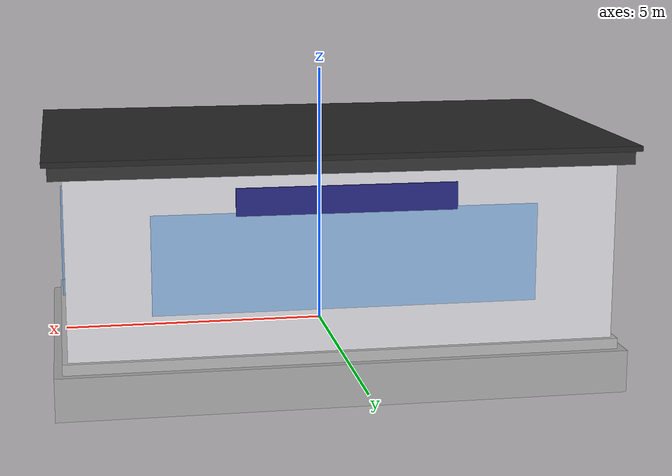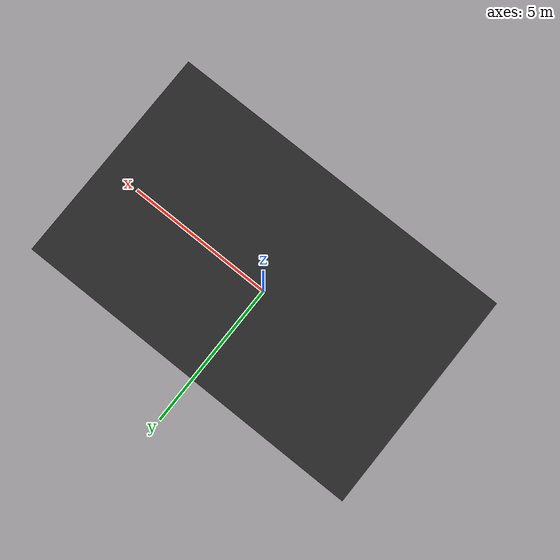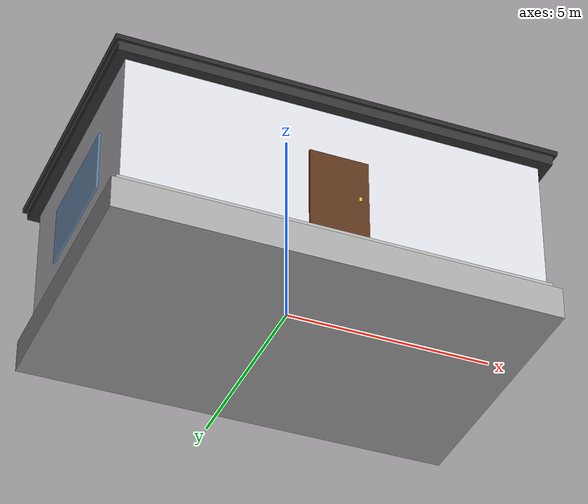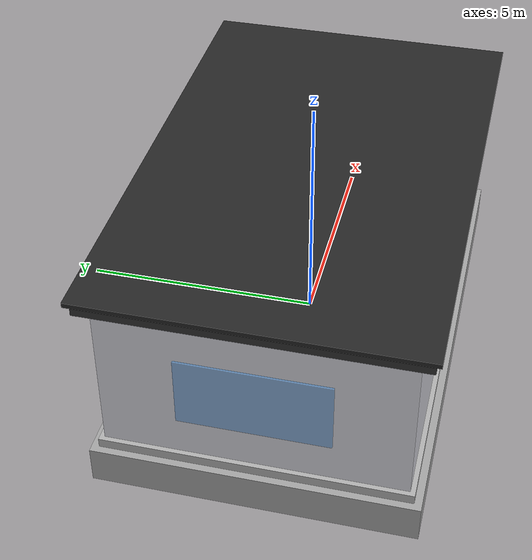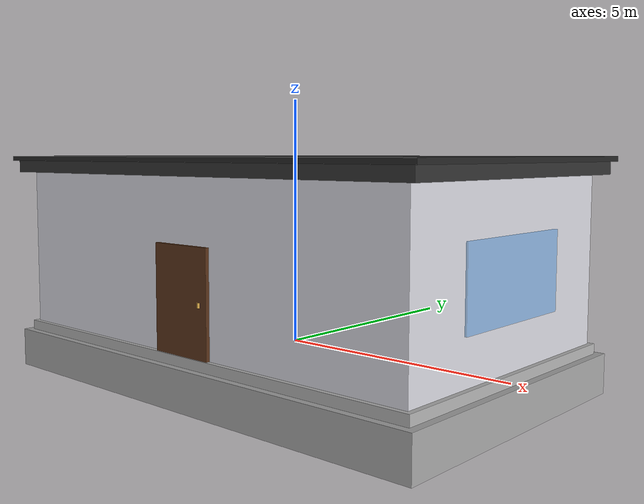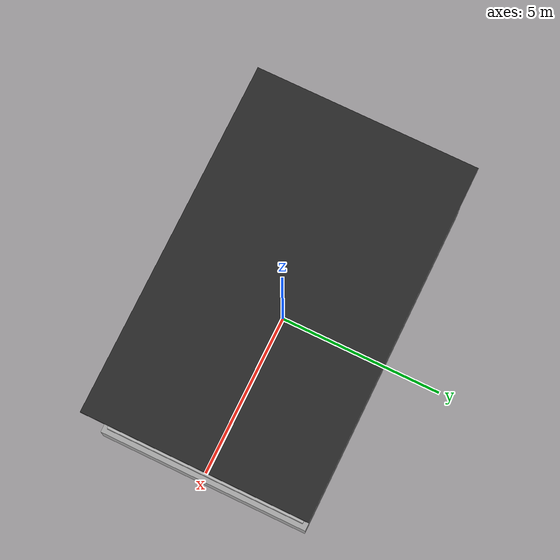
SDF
<?xml version="1.0"?>

<sdf version="1.10">

<model name="control_room">

  <static>true</static>

  <link name="body">

    <!-- MAIN BUILDING -->

    <collision name="collision">
      <pose>0 0 1.75 0 0 0</pose>
      <geometry>
        <box>
          <size>10 6 3.5</size>
        </box>
      </geometry>
    </collision>

    <!-- CONCRETE FOUNDATION -->
    <visual name="foundation">
      <pose>0 0 -0.4 0 0 0</pose>
      <geometry>
        <box>
          <size>10.5 6.5 0.8</size>
        </box>
      </geometry>
      <material>
        <ambient>0.6 0.6 0.6 1</ambient>
        <diffuse>0.65 0.65 0.65 1</diffuse>
        <specular>0.1 0.1 0.1 1</specular>
      </material>
    </visual>

    <collision name="foundation_collision">
      <pose>0 0 -0.4 0 0 0</pose>
      <geometry>
        <box>
          <size>10.5 6.5 0.8</size>
        </box>
      </geometry>
    </collision>

    <visual name="walls">
      <pose>0 0 1.75 0 0 0</pose>
      <geometry>
        <box>
          <size>10 6 3.5</size>
        </box>
      </geometry>
      <material>
        <ambient>0.75 0.75 0.78 1</ambient>
        <diffuse>0.85 0.85 0.88 1</diffuse>
        <specular>0.2 0.2 0.2 1</specular>
      </material>
    </visual>

    <!-- Wall edge trim -->
    <visual name="wall_edge_bottom">
      <pose>0 0 0.1 0 0 0</pose>
      <geometry>
        <box>
          <size>10.2 6.2 0.2</size>
        </box>
      </geometry>
      <material>
        <ambient>0.6 0.6 0.6 1</ambient>
        <diffuse>0.7 0.7 0.7 1</diffuse>
      </material>
    </visual>

    <!-- ROOF -->

    <visual name="roof_main">
      <pose>0 0 3.65 0 0 0</pose>
      <geometry>
        <box>
          <size>10.5 6.5 0.3</size>
        </box>
      </geometry>
      <material>
        <ambient>0.15 0.15 0.15 1</ambient>
        <diffuse>0.2 0.2 0.2 1</diffuse>
      </material>
    </visual>

    <!-- Roof edge -->
    <visual name="roof_edge">
      <pose>0 0 3.8 0 0 0</pose>
      <geometry>
        <box>
          <size>10.7 6.7 0.1</size>
        </box>
      </geometry>
      <material>
        <ambient>0.1 0.1 0.1 1</ambient>
        <diffuse>0.15 0.15 0.15 1</diffuse>
      </material>
    </visual>

    <!-- FRONT GLASS WINDOW -->

    <visual name="front_window">

      <pose>0 3.02 1.9 0 0 0</pose>

      <geometry>
        <box>
          <size>7 0.05 1.8</size>
        </box>
      </geometry>

      <material>
        <ambient>0.2 0.5 0.8 0.5</ambient>
        <diffuse>0.3 0.6 0.9 0.5</diffuse>
      </material>

    </visual>

    <!-- SIDE WINDOWS -->

    <visual name="left_window">

      <pose>-5.02 0 1.8 0 0 1.57</pose>

      <geometry>
        <box>
          <size>3 0.05 1.5</size>
        </box>
      </geometry>

      <material>
        <ambient>0.2 0.5 0.8 0.5</ambient>
        <diffuse>0.3 0.6 0.9 0.5</diffuse>
      </material>

    </visual>

    <visual name="right_window">

      <pose>5.02 0 1.8 0 0 1.57</pose>

      <geometry>
        <box>
          <size>3 0.05 1.5</size>
        </box>
      </geometry>

      <material>
        <ambient>0.2 0.5 0.8 0.5</ambient>
        <diffuse>0.3 0.6 0.9 0.5</diffuse>
      </material>

    </visual>

    <!-- ENTRANCE DOOR -->

    <visual name="door_frame">
      <pose>0 -3.02 1.1 0 0 0</pose>
      <geometry>
        <box>
          <size>1.4 0.12 2.3</size>
        </box>
      </geometry>
      <material>
        <ambient>0.25 0.15 0.08 1</ambient>
        <diffuse>0.35 0.2 0.1 1</diffuse>
      </material>
    </visual>

    <visual name="door_handle">
      <pose>0.5 -3.05 1.2 0 0 0</pose>
      <geometry>
        <cylinder>
          <radius>0.05</radius>
          <length>0.1</length>
        </cylinder>
      </geometry>
      <material>
        <ambient>0.8 0.6 0.2 1</ambient>
        <diffuse>0.9 0.7 0.3 1</diffuse>
      </material>
    </visual>

    <!-- MAIN CONTROL CONSOLE -->

    <visual name="console_main">
      <pose>0 0.5 0.8 0 0 0</pose>
      <geometry>
        <box>
          <size>4.2 1.3 1</size>
        </box>
      </geometry>
      <material>
        <ambient>0.1 0.1 0.1 1</ambient>
        <diffuse>0.15 0.15 0.15 1</diffuse>
      </material>
    </visual>

    <!-- Console display screen area -->
    <visual name="console_screen">
      <pose>0 0.55 1.0 0 0 0</pose>
      <geometry>
        <box>
          <size>2.5 0.8 0.5</size>
        </box>
      </geometry>
      <material>
        <ambient>0.1 0.1 0.1 1</ambient>
        <diffuse>0.15 0.15 0.15 1</diffuse>
      </material>
    </visual>

    <!-- ELECTRICAL CABINET -->

    <visual name="cabinet">

      <pose>-3 0 1 0 0 0</pose>

      <geometry>
        <box>
          <size>1 0.8 2</size>
        </box>
      </geometry>

      <material>
        <ambient>0.7 0.7 0.7 1</ambient>
        <diffuse>0.75 0.75 0.75 1</diffuse>
      </material>

    </visual>

    <!-- SUBSTATION NAME BOARD -->

    <visual name="name_panel">

      <pose>0 3.05 3.0 0 0 0</pose>

      <geometry>
        <box>
          <size>4 0.05 0.5</size>
        </box>
      </geometry>

      <material>
        <ambient>0.1 0.1 0.4 1</ambient>
        <diffuse>0.15 0.15 0.5 1</diffuse>
      </material>

    </visual>

  </link>

</model>

</sdf>
